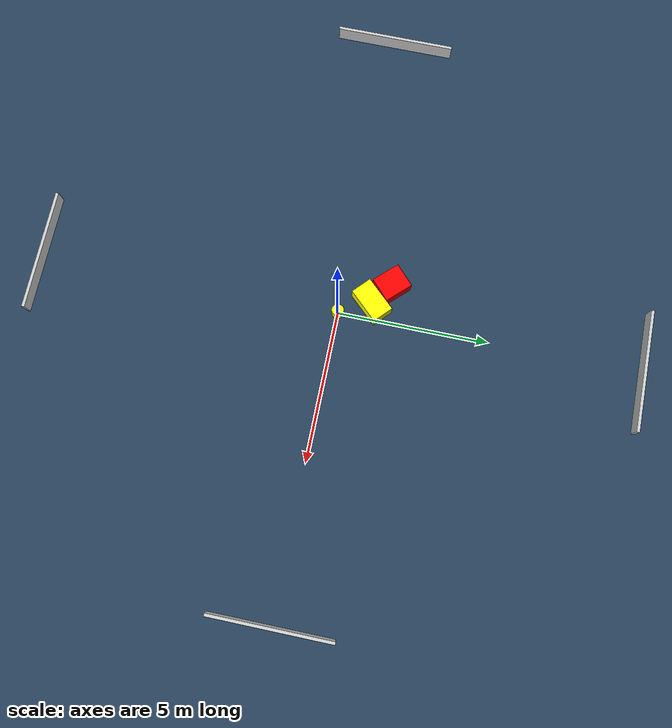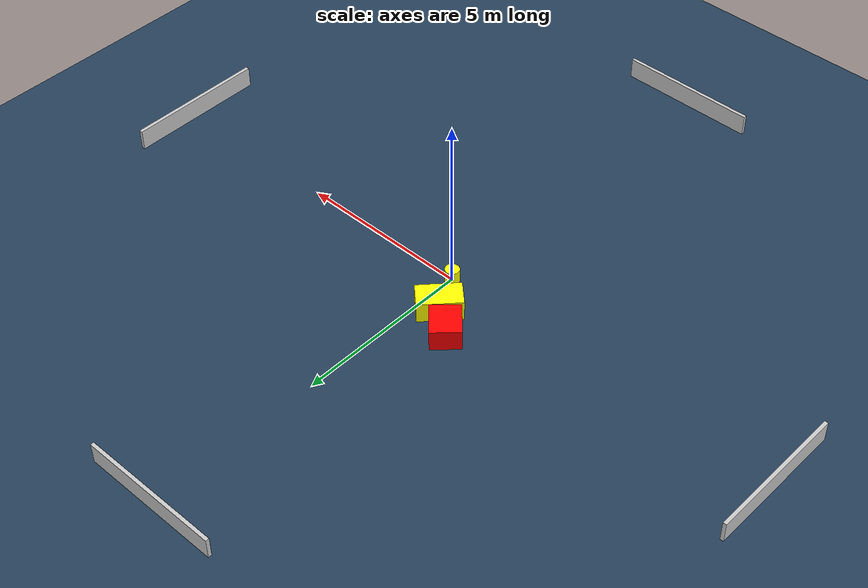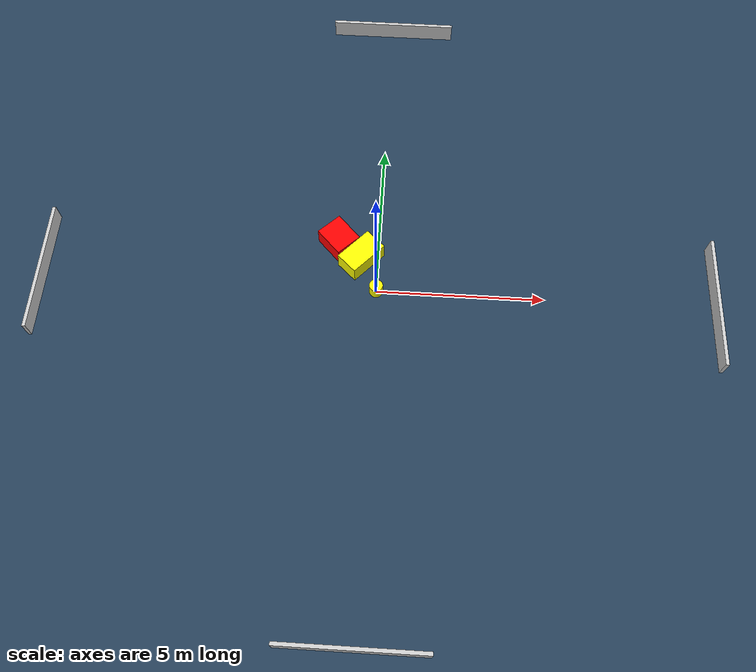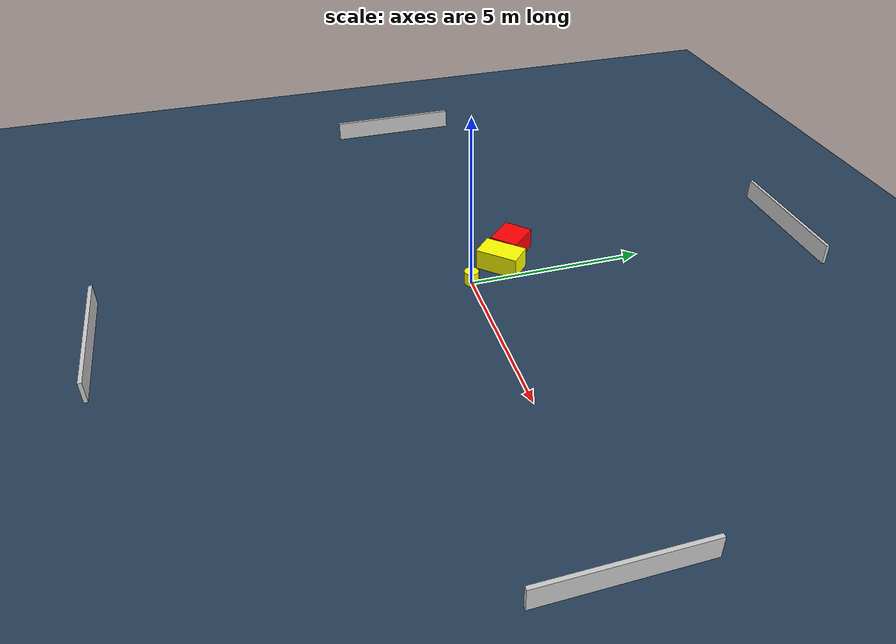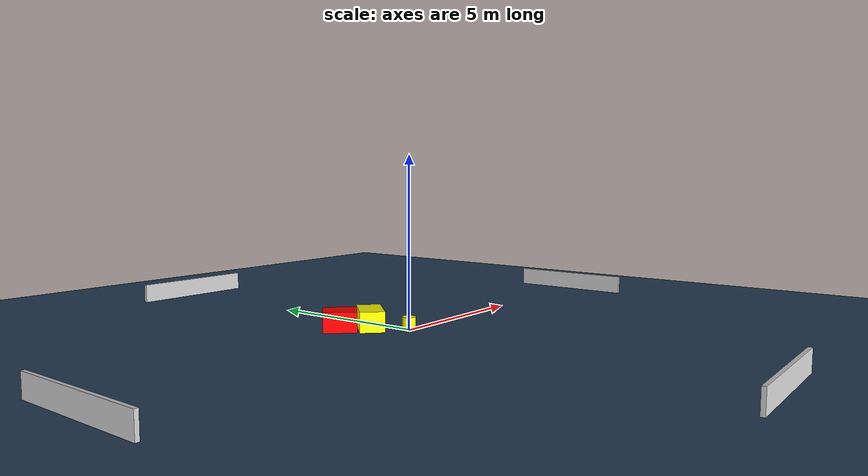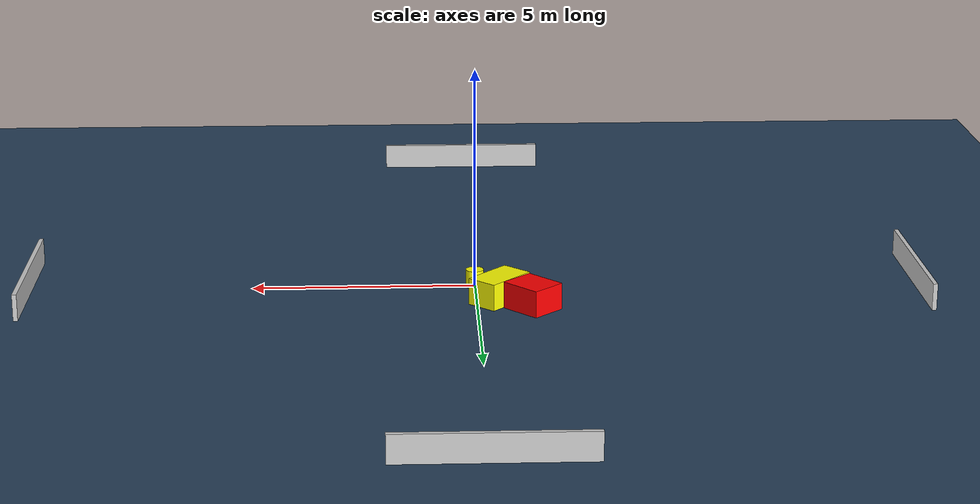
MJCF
<?xml version="1.0" ?>
<mujoco model="generated_environment">
  <option timestep="0.01" integrator="RK4" cone="elliptic"/>
  <default>
    <geom density="1"/>
  </default>
  <asset>
    <texture builtin="gradient" height="3072" name="skybox" rgb1="0.3 0.5 0.7" rgb2="0 0 0" type="skybox" width="512"/>
    <texture builtin="checker" height="300" name="groundplane" rgb1="0.2 0.3 0.4" rgb2="0.1 0.2 0.3" type="2d" width="300"/>
    <material name="groundplane" reflectance="0.2" texrepeat="5 5" texture="groundplane"/>
  </asset>
  <worldbody>
    <light dir="0 0 -1" directional="true" pos="0 0 1.5"/>
    <geom condim="3" friction="0.5 0.005 0.001" material="groundplane" name="floor" pos="0 0 0" size="0 0 0.05" type="plane"/>
    <body name="walls">
      <geom name="wall_1" condim="4" pos="-10.0 0.0 0.3" rgba="0.800000011920929 0.800000011920929 0.800000011920929 1.0" size="0.05 2.0 0.3" type="box"/>
      <geom name="wall_2" condim="4" pos="10.0 0.0 0.3" rgba="0.800000011920929 0.800000011920929 0.800000011920929 1.0" size="0.05 2.0 0.3" type="box"/>
      <geom name="wall_3" condim="4" pos="0.0 -10.0 0.3" rgba="0.800000011920929 0.800000011920929 0.800000011920929 1.0" size="2.0 0.05 0.3" type="box"/>
      <geom name="wall_4" condim="4" pos="0.0 10.0 0.3" rgba="0.800000011920929 0.800000011920929 0.800000011920929 1.0" size="2.0 0.05 0.3" type="box"/>
    </body>
    <body name="robot">
      <joint name="joint_x" type="slide" pos="0 0 0" axis="1 0 0"/>
      <joint name="joint_y" type="slide" pos="0 0 0" axis="0 1 0"/>
      <geom name="robot" type="cylinder" pos="0.0 0.0 0.2" size="0.2 0.2 0.0" mass="5.0" friction="1.0 0.005 0.0001" condim="4" rgba="1.0 1.0 0.0 1.0"/>
    </body>
    <body name="obstacle_1_movable">
      <geom name="obstacle_1_movable" condim="4" pos="-0.5071487003429233 1.0301349538375155 0.3" euler="0 0 227.00887168735238" friction="0.0 0.005 0.001" rgba="1.0 1.0 0.0 1.0" size="0.6106931592052727 0.3613977866482059 0.3" type="box" mass="0.1"/>
      <joint type="free"/>
    </body>
    <body name="obstacle_2_static">
      <geom name="obstacle_2_static" condim="4" pos="-1.2171937037373317 1.5640689040158655 0.3" euler="0 0 313.56295484764837" friction="0.0 0.005 0.001" rgba="1.0 0.0 0.0 1.0" size="0.4848309685135665 0.4149697601022569 0.3" type="box"/>
    </body>
  </worldbody>
  <actuator>
    <motor name="actuator_x" joint="joint_x" gear="1" ctrlrange="-1 1"/>
    <motor name="actuator_y" joint="joint_y" gear="1" ctrlrange="-1 1"/>
  </actuator>
</mujoco>
